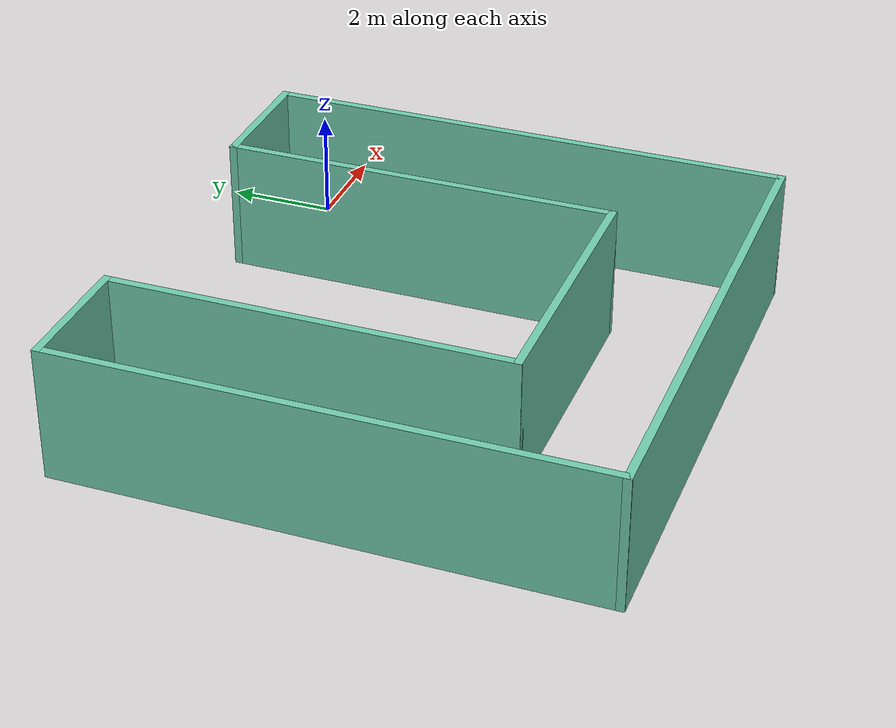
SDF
<?xml version='1.0'?>
<sdf version='1.6'>
  <model name='mybuilding'>
    <pose frame=''>-5.01921 -4.1417 0 0 -0 0</pose>
    <link name='Wall_12'>
      <collision name='Wall_12_Collision'>
        <geometry>
          <box>
            <size>10 0.15 2.5</size>
          </box>
        </geometry>
        <pose frame=''>0 0 1.25 0 -0 0</pose>
      </collision>
      <visual name='Wall_12_Visual'>
        <pose frame=''>0 0 1.25 0 -0 0</pose>
        <geometry>
          <box>
            <size>10 0.15 2.5</size>
          </box>
        </geometry>
        <material>
          <script>
            <uri>file://media/materials/scripts/gazebo.material</uri>
            <name>Gazebo/Grey</name>
          </script>
          <ambient>0.435294 0.796078 0.67451 1</ambient>
        </material>
        <meta>
          <layer>0</layer>
        </meta>
      </visual>
      <pose frame=''>-0.019208 -4.925 0 0 -0 0</pose>
    </link>
    <link name='Wall_13'>
      <collision name='Wall_13_Collision'>
        <geometry>
          <box>
            <size>10 0.15 2.5</size>
          </box>
        </geometry>
        <pose frame=''>0 0 1.25 0 -0 0</pose>
      </collision>
      <visual name='Wall_13_Visual'>
        <pose frame=''>0 0 1.25 0 -0 0</pose>
        <geometry>
          <box>
            <size>10 0.15 2.5</size>
          </box>
        </geometry>
        <material>
          <script>
            <uri>file://media/materials/scripts/gazebo.material</uri>
            <name>Gazebo/Grey</name>
          </script>
          <ambient>0.435294 0.796078 0.67451 1</ambient>
        </material>
        <meta>
          <layer>0</layer>
        </meta>
      </visual>
      <pose frame=''>4.90579 0 0 0 -0 1.5708</pose>
    </link>
    <link name='Wall_15'>
      <collision name='Wall_15_Collision'>
        <geometry>
          <box>
            <size>2.5 0.15 2.5</size>
          </box>
        </geometry>
        <pose frame=''>0 0 1.25 0 -0 0</pose>
      </collision>
      <visual name='Wall_15_Visual'>
        <pose frame=''>0 0 1.25 0 -0 0</pose>
        <geometry>
          <box>
            <size>2.5 0.15 2.5</size>
          </box>
        </geometry>
        <material>
          <script>
            <uri>file://media/materials/scripts/gazebo.material</uri>
            <name>Gazebo/Grey</name>
          </script>
          <ambient>0.435294 0.796078 0.67451 1</ambient>
        </material>
        <meta>
          <layer>0</layer>
        </meta>
      </visual>
      <pose frame=''>3.73079 4.925 0 0 -0 3.14159</pose>
    </link>
    <link name='Wall_18'>
      <collision name='Wall_18_Collision'>
        <geometry>
          <box>
            <size>7.5 0.15 2.5</size>
          </box>
        </geometry>
        <pose frame=''>0 0 1.25 0 -0 0</pose>
      </collision>
      <visual name='Wall_18_Visual'>
        <pose frame=''>0 0 1.25 0 -0 0</pose>
        <geometry>
          <box>
            <size>7.5 0.15 2.5</size>
          </box>
        </geometry>
        <material>
          <script>
            <uri>file://media/materials/scripts/gazebo.material</uri>
            <name>Gazebo/Grey</name>
          </script>
          <ambient>0.435294 0.796078 0.67451 1</ambient>
        </material>
        <meta>
          <layer>0</layer>
        </meta>
      </visual>
      <pose frame=''>2.55579 1.25 0 0 -0 -1.5708</pose>
    </link>
    <link name='Wall_24'>
      <collision name='Wall_24_Collision'>
        <geometry>
          <box>
            <size>7.5 0.15 2.5</size>
          </box>
        </geometry>
        <pose frame=''>0 0 1.25 0 -0 0</pose>
      </collision>
      <visual name='Wall_24_Visual'>
        <pose frame=''>0 0 1.25 0 -0 0</pose>
        <geometry>
          <box>
            <size>7.5 0.15 2.5</size>
          </box>
        </geometry>
        <material>
          <script>
            <uri>file://media/materials/scripts/gazebo.material</uri>
            <name>Gazebo/Grey</name>
          </script>
          <ambient>0.435294 0.796078 0.67451 1</ambient>
        </material>
        <meta>
          <layer>0</layer>
        </meta>
      </visual>
      <pose frame=''>-2.59421 1.25 0 0 -0 -1.5708</pose>
    </link>
    <link name='Wall_25'>
      <collision name='Wall_25_Collision'>
        <geometry>
          <box>
            <size>5.3 0.15 2.5</size>
          </box>
        </geometry>
        <pose frame=''>0 0 1.25 0 -0 0</pose>
      </collision>
      <visual name='Wall_25_Visual'>
        <pose frame=''>0 0 1.25 0 -0 0</pose>
        <geometry>
          <box>
            <size>5.3 0.15 2.5</size>
          </box>
        </geometry>
        <material>
          <script>
            <uri>file://media/materials/scripts/gazebo.material</uri>
            <name>Gazebo/Grey</name>
          </script>
          <ambient>0.435294 0.796078 0.67451 1</ambient>
        </material>
        <meta>
          <layer>0</layer>
        </meta>
      </visual>
      <pose frame=''>-0.019208 -2.425 0 0 -0 0</pose>
    </link>
    <link name='Wall_7'>
      <collision name='Wall_7_Collision'>
        <geometry>
          <box>
            <size>10 0.15 2.5</size>
          </box>
        </geometry>
        <pose frame=''>0 0 1.25 0 -0 0</pose>
      </collision>
      <visual name='Wall_7_Visual'>
        <pose frame=''>0 0 1.25 0 -0 0</pose>
        <geometry>
          <box>
            <size>10 0.15 2.5</size>
          </box>
        </geometry>
        <material>
          <script>
            <uri>file://media/materials/scripts/gazebo.material</uri>
            <name>Gazebo/Grey</name>
          </script>
          <ambient>0.435294 0.796078 0.67451 1</ambient>
        </material>
        <meta>
          <layer>0</layer>
        </meta>
      </visual>
      <pose frame=''>-4.94421 0 0 0 -0 1.5708</pose>
    </link>
    <link name='Wall_9'>
      <collision name='Wall_9_Collision'>
        <geometry>
          <box>
            <size>2.5 0.15 2.5</size>
          </box>
        </geometry>
        <pose frame=''>0 0 1.25 0 -0 0</pose>
      </collision>
      <visual name='Wall_9_Visual'>
        <pose frame=''>0 0 1.25 0 -0 0</pose>
        <geometry>
          <box>
            <size>2.5 0.15 2.5</size>
          </box>
        </geometry>
        <material>
          <script>
            <uri>file://media/materials/scripts/gazebo.material</uri>
            <name>Gazebo/Grey</name>
          </script>
          <ambient>0.435294 0.796078 0.67451 1</ambient>
        </material>
        <meta>
          <layer>0</layer>
        </meta>
      </visual>
      <pose frame=''>-3.76921 4.925 0 0 -0 0</pose>
    </link>
    <static>1</static>
  </model>
</sdf>
